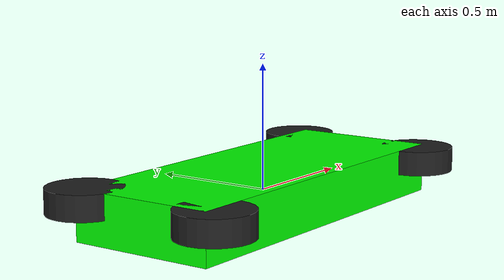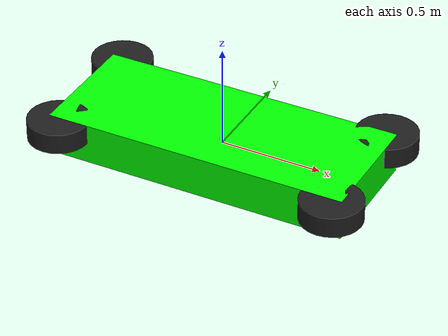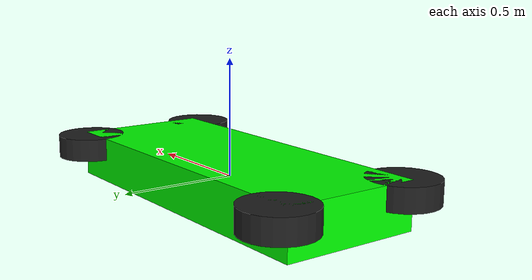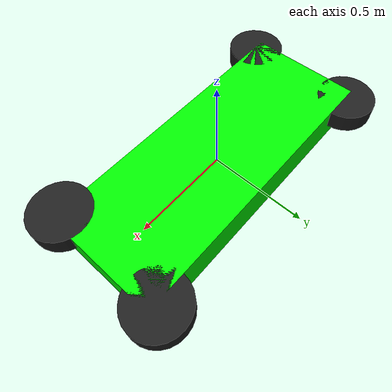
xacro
<?xml version="1.0"?>
<robot name="ev_4wd" xmlns:xacro="http://ros.org/wiki/xacro">

  <!-- Base link (chassis) -->
  <link name="chassis">
    <inertial>
      <origin xyz="0 0 0.1"/>
      <mass value="250.0"/> <!-- Adjust the mass of the chassis as needed -->
      <inertia ixx="10.0" ixy="0.0" ixz="0.0" iyy="20.0" iyz="0.0" izz="30.0"/> <!-- Inertial properties -->
    </inertial>
    <visual>
      <geometry>
        <box size="1.5 0.6 0.2"/> <!-- Chassis dimensions: length, width, height -->
      </geometry>
      <material name="green">
        <color rgba="0.0 1.0 0.0 1.0"/> <!-- Chassis color: green -->
      </material>
    </visual>
    <collision>
      <geometry>
        <box size="1.5 0.6 0.2"/>
      </geometry>
    </collision>
  </link>

  <!-- Define the rear left wheel -->
  <link name="rear_left_wheel">
    <inertial>
      <origin xyz="0 0 0"/>
      <mass value="10.0"/> <!-- Mass of the rear left wheel -->
      <inertia ixx="0.02" ixy="0.0" ixz="0.0" iyy="0.02" iyz="0.0" izz="0.02"/> <!-- Inertial properties for the wheel -->
    </inertial>
    <visual>
      <geometry>
        <cylinder radius="0.15" length="0.1"/> <!-- Cylinder radius and length for the rear left wheel -->
      </geometry>
      <material name="black"/> <!-- Wheel color -->
    </visual>
    <collision>
      <geometry>
        <cylinder radius="0.15" length="0.1"/>
      </geometry>
    </collision>
  </link>

  <!-- Define the rear right wheel -->
  <link name="rear_right_wheel">
    <inertial>
      <origin xyz="0 0 0"/>
      <mass value="10.0"/> <!-- Mass of the rear right wheel -->
      <inertia ixx="0.02" ixy="0.0" ixz="0.0" iyy="0.02" iyz="0.0" izz="0.02"/> <!-- Inertial properties for the wheel -->
    </inertial>
    <visual>
      <geometry>
        <cylinder radius="0.15" length="0.1"/> <!-- Cylinder radius and length for the rear right wheel -->
      </geometry>
      <material name="black"/>
    </visual>
    <collision>
      <geometry>
        <cylinder radius="0.15" length="0.1"/>
      </geometry>
    </collision>
  </link>

  <!-- Define the front left wheel -->
  <link name="front_left_wheel">
    <inertial>
      <origin xyz="0 0 0"/>
      <mass value="10.0"/> <!-- Mass of the front left wheel -->
      <inertia ixx="0.02" ixy="0.0" ixz="0.0" iyy="0.02" iyz="0.0" izz="0.02"/> <!-- Inertial properties for the wheel -->
    </inertial>
    <visual>
      <geometry>
        <cylinder radius="0.15" length="0.1"/> <!-- Cylinder radius and length for the front left wheel -->
      </geometry>
      <material name="black"/>
    </visual>
    <collision>
      <geometry>
        <cylinder radius="0.15" length="0.1"/>
      </geometry>
    </collision>
  </link>

  <!-- Define the front right wheel -->
  <link name="front_right_wheel">
    <inertial>
      <origin xyz="0 0 0"/>
      <mass value="10.0"/> <!-- Mass of the front right wheel -->
      <inertia ixx="0.02" ixy="0.0" ixz="0.0" iyy="0.02" iyz="0.0" izz="0.02"/> <!-- Inertial properties for the wheel -->
    </inertial>
    <visual>
      <geometry>
        <cylinder radius="0.15" length="0.1"/> <!-- Cylinder radius and length for the front right wheel -->
      </geometry>
      <material name="black"/>
    </visual>
    <collision>
      <geometry>
        <cylinder radius="0.15" length="0.1"/>
      </geometry>
    </collision>
  </link>

  <!-- Rear left wheel joint -->
  <joint name="rear_left_wheel_joint" type="continuous">
    <parent link="chassis"/>
    <child link="rear_left_wheel"/>
    <origin xyz="-0.7 0.3 0.05" rpy="0 0 0"/> <!-- Position of the rear left wheel relative to the chassis -->
    <axis xyz="0 1 0"/> <!-- Axis of rotation for the wheel -->
  </joint>

  <!-- Rear right wheel joint -->
  <joint name="rear_right_wheel_joint" type="continuous">
    <parent link="chassis"/>
    <child link="rear_right_wheel"/>
    <origin xyz="-0.7 -0.3 0.05" rpy="0 0 0"/> <!-- Position of the rear right wheel relative to the chassis -->
    <axis xyz="0 1 0"/>
  </joint>

  <!-- Front left wheel joint -->
  <joint name="front_left_wheel_joint" type="continuous">
    <parent link="chassis"/>
    <child link="front_left_wheel"/>
    <origin xyz="0.7 0.3 0.05" rpy="0 0 0"/> <!-- Position of the front left wheel relative to the chassis -->
    <axis xyz="0 1 0"/>
  </joint>

  <!-- Front right wheel joint -->
  <joint name="front_right_wheel_joint" type="continuous">
    <parent link="chassis"/>
    <child link="front_right_wheel"/>
    <origin xyz="0.7 -0.3 0.05" rpy="0 0 0"/> <!-- Position of the front right wheel relative to the chassis -->
    <axis xyz="0 1 0"/>
  </joint>

</robot>
